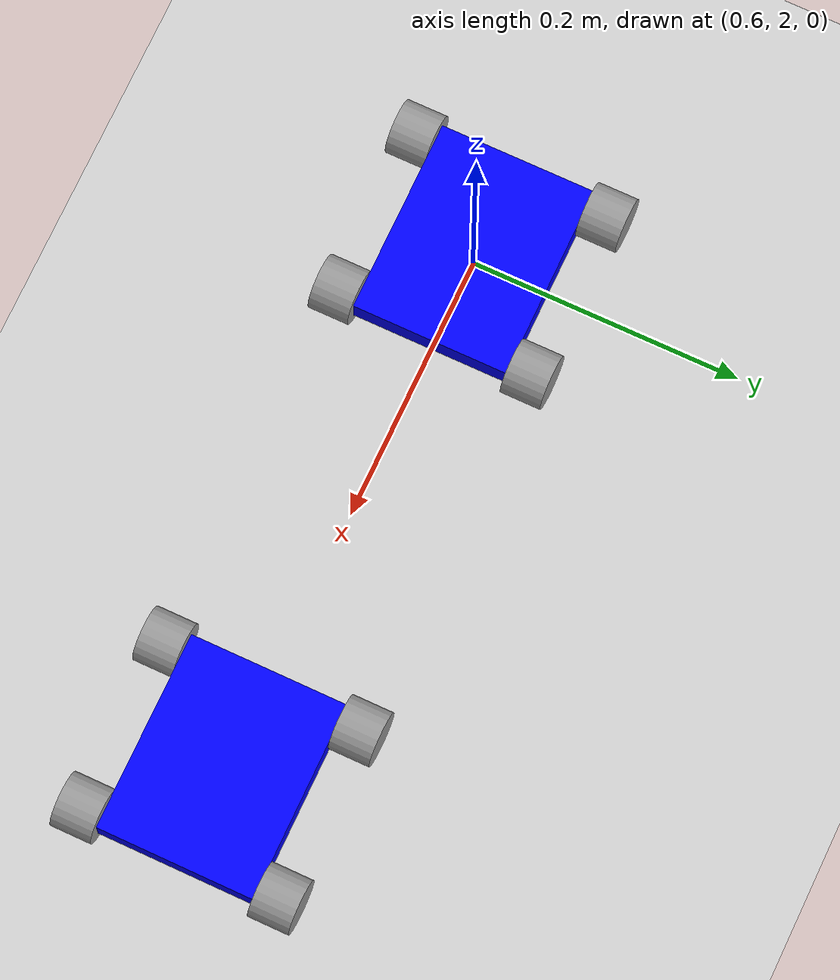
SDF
<sdf version="1.6">
 <world name="default">
  <model name="ground_plane">
   <static>1</static>
   <link name="link">
    <collision name="collision">
     <geometry><plane><normal>0 0 1</normal><size>100 100</size></plane></geometry>
     <surface><friction><ode><mu>100</mu><mu2>50</mu2></ode></friction></surface>
    </collision>
    <visual name="visual">
     <cast_shadows>0</cast_shadows>
     <geometry><plane><normal>0 0 1</normal><size>100 100</size></plane></geometry>
     <material>
      <script><uri>file://media/materials/scripts/gazebo.material</uri><name>Gazebo/Grey</name></script>
     </material>
    </visual>
   </link>
  </model>
  <model name="nanocrawler4">
   <link name="chassis">
    <inertial>
     <mass>1</mass>
     <inertia>
      <ixx>0.166667</ixx>
      <ixy>0</ixy>
      <ixz>0</ixz>
      <iyy>0.166667</iyy>
      <iyz>0</iyz>
      <izz>0.166667</izz>
     </inertia>
    </inertial>
    <visual name="visual">
     <geometry><box><size>0.145 0.115 0.02</size></box></geometry>
     <material>
      <lighting>1</lighting>
      <script><uri>file://media/materials/scripts/gazebo.material</uri><name>Gazebo/Grey</name></script>
      <shader type="pixel"><normal_map>__default__</normal_map></shader>
      <ambient>0 0 1 1</ambient>
      <diffuse>0.7 0.7 0.7 1</diffuse>
      <specular>0.01 0.01 0.01 1</specular>
      <emissive>0 0 0 1</emissive>
     </material>
    </visual>
    <collision name="collision">
     <geometry><box><size>0.145 0.115 0.02</size></box></geometry>
     <surface>
      <friction>
       <ode><mu>1</mu><mu2>1</mu2><fdir1>0 0 0</fdir1><slip1>0</slip1><slip2>0</slip2></ode>
       <torsional>
        <coefficient>1</coefficient>
        <patch_radius>0</patch_radius>
        <surface_radius>0</surface_radius>
        <use_patch_radius>1</use_patch_radius>
        <ode><slip>0</slip></ode>
       </torsional>
      </friction>
      <bounce><restitution_coefficient>0</restitution_coefficient><threshold>1e+06</threshold></bounce>
      <contact>
       <collide_without_contact>0</collide_without_contact>
       <collide_without_contact_bitmask>1</collide_without_contact_bitmask>
       <collide_bitmask>1</collide_bitmask>
       <ode>
        <soft_cfm>0</soft_cfm>
        <soft_erp>0.2</soft_erp>
        <kp>1e+13</kp>
        <kd>1</kd>
        <max_vel>0.01</max_vel>
        <min_depth>0</min_depth>
       </ode>
       <bullet>
        <split_impulse>1</split_impulse>
        <split_impulse_penetration_threshold>-0.01</split_impulse_penetration_threshold>
        <soft_cfm>0</soft_cfm>
        <soft_erp>0.2</soft_erp>
        <kp>1e+13</kp>
        <kd>1</kd>
       </bullet>
      </contact>
     </surface>
    </collision>
   </link>
   <link name="left_front_wheel">
    <pose>0.0625 0.0725 0 1.5708 -0 0</pose>
    <inertial>
     <mass>1</mass>
     <inertia><ixx>0.145833</ixx><ixy>0</ixy><ixz>0</ixz><iyy>0.145833</iyy><iyz>0</iyz><izz>0.125</izz></inertia>
    </inertial>
    <visual name="visual">
     <geometry><cylinder><radius>0.02</radius><length>0.03</length></cylinder></geometry>
     <material>
      <lighting>1</lighting>
      <script><uri>file://media/materials/scripts/gazebo.material</uri><name>Gazebo/Grey</name></script>
      <shader type="pixel"><normal_map>__default__</normal_map></shader>
      <ambient>0.1 0.1 0.1 1</ambient>
      <diffuse>0.7 0.7 0.7 1</diffuse>
      <specular>0.01 0.01 0.01 1</specular>
      <emissive>0 0 0 1</emissive>
     </material>
    </visual>
    <collision name="collision">
     <geometry><cylinder><radius>0.02</radius><length>0.03</length></cylinder></geometry>
     <surface>
      <friction>
       <ode><mu>1</mu><mu2>1</mu2><fdir1>0 0 0</fdir1><slip1>0</slip1><slip2>0</slip2></ode>
       <torsional>
        <coefficient>1</coefficient>
        <patch_radius>0</patch_radius>
        <surface_radius>0</surface_radius>
        <use_patch_radius>1</use_patch_radius>
        <ode><slip>0</slip></ode>
       </torsional>
      </friction>
      <bounce><restitution_coefficient>0</restitution_coefficient><threshold>1e+06</threshold></bounce>
      <contact>
       <collide_without_contact>0</collide_without_contact>
       <collide_without_contact_bitmask>1</collide_without_contact_bitmask>
       <collide_bitmask>1</collide_bitmask>
       <ode>
        <soft_cfm>0</soft_cfm>
        <soft_erp>0.2</soft_erp>
        <kp>1e+13</kp>
        <kd>1</kd>
        <max_vel>0.01</max_vel>
        <min_depth>0</min_depth>
       </ode>
       <bullet>
        <split_impulse>1</split_impulse>
        <split_impulse_penetration_threshold>-0.01</split_impulse_penetration_threshold>
        <soft_cfm>0</soft_cfm>
        <soft_erp>0.2</soft_erp>
        <kp>1e+13</kp>
        <kd>1</kd>
       </bullet>
      </contact>
     </surface>
    </collision>
   </link>
   <joint name="left_front_wheel_hinge" type="revolute">
    <child>left_front_wheel</child>
    <parent>chassis</parent>
    <axis>
     <xyz>0 0 1</xyz>
     <use_parent_model_frame>0</use_parent_model_frame>
     <limit><lower>-1e+16</lower><upper>1e+16</upper></limit>
     <dynamics><spring_reference>0</spring_reference><spring_stiffness>0</spring_stiffness></dynamics>
    </axis>
   </joint>
   <link name="right_front_wheel">
    <pose>0.0625 -0.0725 0 1.5708 -0 0</pose>
    <inertial>
     <mass>1</mass>
     <inertia><ixx>0.145833</ixx><ixy>0</ixy><ixz>0</ixz><iyy>0.145833</iyy><iyz>0</iyz><izz>0.125</izz></inertia>
    </inertial>
    <visual name="visual">
     <geometry><cylinder><radius>0.02</radius><length>0.03</length></cylinder></geometry>
     <material>
      <lighting>1</lighting>
      <script><uri>file://media/materials/scripts/gazebo.material</uri><name>Gazebo/Grey</name></script>
      <shader type="pixel"><normal_map>__default__</normal_map></shader>
      <ambient>0.1 0.1 0.1 1</ambient>
      <diffuse>0.7 0.7 0.7 1</diffuse>
      <specular>0.01 0.01 0.01 1</specular>
      <emissive>0 0 0 1</emissive>
     </material>
    </visual>
    <collision name="collision">
     <geometry><cylinder><radius>0.02</radius><length>0.03</length></cylinder></geometry>
     <surface>
      <friction>
       <ode><mu>1</mu><mu2>1</mu2><fdir1>0 0 0</fdir1><slip1>0</slip1><slip2>0</slip2></ode>
       <torsional>
        <coefficient>1</coefficient>
        <patch_radius>0</patch_radius>
        <surface_radius>0</surface_radius>
        <use_patch_radius>1</use_patch_radius>
        <ode><slip>0</slip></ode>
       </torsional>
      </friction>
      <bounce><restitution_coefficient>0</restitution_coefficient><threshold>1e+06</threshold></bounce>
      <contact>
       <collide_without_contact>0</collide_without_contact>
       <collide_without_contact_bitmask>1</collide_without_contact_bitmask>
       <collide_bitmask>1</collide_bitmask>
       <ode>
        <soft_cfm>0</soft_cfm>
        <soft_erp>0.2</soft_erp>
        <kp>1e+13</kp>
        <kd>1</kd>
        <max_vel>0.01</max_vel>
        <min_depth>0</min_depth>
       </ode>
       <bullet>
        <split_impulse>1</split_impulse>
        <split_impulse_penetration_threshold>-0.01</split_impulse_penetration_threshold>
        <soft_cfm>0</soft_cfm>
        <soft_erp>0.2</soft_erp>
        <kp>1e+13</kp>
        <kd>1</kd>
       </bullet>
      </contact>
     </surface>
    </collision>
   </link>
   <joint name="right_front_wheel_hinge" type="revolute">
    <child>right_front_wheel</child>
    <parent>chassis</parent>
    <axis>
     <xyz>0 0 1</xyz>
     <use_parent_model_frame>0</use_parent_model_frame>
     <limit><lower>-1e+16</lower><upper>1e+16</upper></limit>
     <dynamics><spring_reference>0</spring_reference><spring_stiffness>0</spring_stiffness></dynamics>
    </axis>
   </joint>
   <link name="left_rear_wheel">
    <pose>-0.0625 0.0725 0 1.5708 -0 0</pose>
    <inertial>
     <mass>1</mass>
     <inertia><ixx>0.145833</ixx><ixy>0</ixy><ixz>0</ixz><iyy>0.145833</iyy><iyz>0</iyz><izz>0.125</izz></inertia>
    </inertial>
    <visual name="visual">
     <geometry><cylinder><radius>0.02</radius><length>0.03</length></cylinder></geometry>
     <material>
      <lighting>1</lighting>
      <script><uri>file://media/materials/scripts/gazebo.material</uri><name>Gazebo/Grey</name></script>
      <shader type="pixel"><normal_map>__default__</normal_map></shader>
      <ambient>0.1 0.1 0.1 1</ambient>
      <diffuse>0.7 0.7 0.7 1</diffuse>
      <specular>0.01 0.01 0.01 1</specular>
      <emissive>0 0 0 1</emissive>
     </material>
    </visual>
    <collision name="collision">
     <geometry><cylinder><radius>0.02</radius><length>0.03</length></cylinder></geometry>
     <surface>
      <friction>
       <ode><mu>1</mu><mu2>1</mu2><fdir1>0 0 0</fdir1><slip1>0</slip1><slip2>0</slip2></ode>
       <torsional>
        <coefficient>1</coefficient>
        <patch_radius>0</patch_radius>
        <surface_radius>0</surface_radius>
        <use_patch_radius>1</use_patch_radius>
        <ode><slip>0</slip></ode>
       </torsional>
      </friction>
      <bounce><restitution_coefficient>0</restitution_coefficient><threshold>1e+06</threshold></bounce>
      <contact>
       <collide_without_contact>0</collide_without_contact>
       <collide_without_contact_bitmask>1</collide_without_contact_bitmask>
       <collide_bitmask>1</collide_bitmask>
       <ode>
        <soft_cfm>0</soft_cfm>
        <soft_erp>0.2</soft_erp>
        <kp>1e+13</kp>
        <kd>1</kd>
        <max_vel>0.01</max_vel>
        <min_depth>0</min_depth>
       </ode>
       <bullet>
        <split_impulse>1</split_impulse>
        <split_impulse_penetration_threshold>-0.01</split_impulse_penetration_threshold>
        <soft_cfm>0</soft_cfm>
        <soft_erp>0.2</soft_erp>
        <kp>1e+13</kp>
        <kd>1</kd>
       </bullet>
      </contact>
     </surface>
    </collision>
   </link>
   <joint name="left_rear_wheel_hinge" type="revolute">
    <child>left_rear_wheel</child>
    <parent>chassis</parent>
    <axis>
     <xyz>0 0 1</xyz>
     <use_parent_model_frame>0</use_parent_model_frame>
     <limit><lower>-1e+16</lower><upper>1e+16</upper></limit>
     <dynamics><spring_reference>0</spring_reference><spring_stiffness>0</spring_stiffness></dynamics>
    </axis>
   </joint>
   <link name="right_rear_wheel">
    <pose>-0.0625 -0.0725 0 1.5708 -0 0</pose>
    <inertial>
     <mass>1</mass>
     <inertia><ixx>0.145833</ixx><ixy>0</ixy><ixz>0</ixz><iyy>0.145833</iyy><iyz>0</iyz><izz>0.125</izz></inertia>
    </inertial>
    <visual name="visual">
     <geometry><cylinder><radius>0.02</radius><length>0.03</length></cylinder></geometry>
     <material>
      <lighting>1</lighting>
      <script><uri>file://media/materials/scripts/gazebo.material</uri><name>Gazebo/Grey</name></script>
      <shader type="pixel"><normal_map>__default__</normal_map></shader>
      <ambient>0.1 0.1 0.1 1</ambient>
      <diffuse>0.7 0.7 0.7 1</diffuse>
      <specular>0.01 0.01 0.01 1</specular>
      <emissive>0 0 0 1</emissive>
     </material>
    </visual>
    <collision name="collision">
     <geometry><cylinder><radius>0.02</radius><length>0.03</length></cylinder></geometry>
     <surface>
      <friction>
       <ode><mu>1</mu><mu2>1</mu2><fdir1>0 0 0</fdir1><slip1>0</slip1><slip2>0</slip2></ode>
       <torsional>
        <coefficient>1</coefficient>
        <patch_radius>0</patch_radius>
        <surface_radius>0</surface_radius>
        <use_patch_radius>1</use_patch_radius>
        <ode><slip>0</slip></ode>
       </torsional>
      </friction>
      <bounce><restitution_coefficient>0</restitution_coefficient><threshold>1e+06</threshold></bounce>
      <contact>
       <collide_without_contact>0</collide_without_contact>
       <collide_without_contact_bitmask>1</collide_without_contact_bitmask>
       <collide_bitmask>1</collide_bitmask>
       <ode>
        <soft_cfm>0</soft_cfm>
        <soft_erp>0.2</soft_erp>
        <kp>1e+13</kp>
        <kd>1</kd>
        <max_vel>0.01</max_vel>
        <min_depth>0</min_depth>
       </ode>
       <bullet>
        <split_impulse>1</split_impulse>
        <split_impulse_penetration_threshold>-0.01</split_impulse_penetration_threshold>
        <soft_cfm>0</soft_cfm>
        <soft_erp>0.2</soft_erp>
        <kp>1e+13</kp>
        <kd>1</kd>
       </bullet>
      </contact>
     </surface>
    </collision>
   </link>
   <joint name="right_rear_wheel_hinge" type="revolute">
    <child>right_rear_wheel</child>
    <parent>chassis</parent>
    <axis>
     <xyz>0 0 1</xyz>
     <use_parent_model_frame>0</use_parent_model_frame>
     <limit><lower>-1e+16</lower><upper>1e+16</upper></limit>
     <dynamics><spring_reference>0</spring_reference><spring_stiffness>0</spring_stiffness></dynamics>
    </axis>
   </joint>
   <static>0</static>
   <pose>0.599744 2.0001 0.02 -1e-06 2e-06 -0.000482</pose>
  </model>
  <model name="nanocrawler5">
   <link name="chassis">
    <inertial>
     <mass>1</mass>
     <inertia>
      <ixx>0.166667</ixx>
      <ixy>0</ixy>
      <ixz>0</ixz>
      <iyy>0.166667</iyy>
      <iyz>0</iyz>
      <izz>0.166667</izz>
     </inertia>
    </inertial>
    <visual name="visual">
     <geometry><box><size>0.145 0.115 0.02</size></box></geometry>
     <material>
      <lighting>1</lighting>
      <script><uri>file://media/materials/scripts/gazebo.material</uri><name>Gazebo/Grey</name></script>
      <shader type="pixel"><normal_map>__default__</normal_map></shader>
      <ambient>0 0 1 1</ambient>
      <diffuse>0.7 0.7 0.7 1</diffuse>
      <specular>0.01 0.01 0.01 1</specular>
      <emissive>0 0 0 1</emissive>
     </material>
    </visual>
    <collision name="collision">
     <geometry><box><size>0.145 0.115 0.02</size></box></geometry>
     <surface>
      <friction>
       <ode><mu>1</mu><mu2>1</mu2><fdir1>0 0 0</fdir1><slip1>0</slip1><slip2>0</slip2></ode>
       <torsional>
        <coefficient>1</coefficient>
        <patch_radius>0</patch_radius>
        <surface_radius>0</surface_radius>
        <use_patch_radius>1</use_patch_radius>
        <ode><slip>0</slip></ode>
       </torsional>
      </friction>
      <bounce><restitution_coefficient>0</restitution_coefficient><threshold>1e+06</threshold></bounce>
      <contact>
       <collide_without_contact>0</collide_without_contact>
       <collide_without_contact_bitmask>1</collide_without_contact_bitmask>
       <collide_bitmask>1</collide_bitmask>
       <ode>
        <soft_cfm>0</soft_cfm>
        <soft_erp>0.2</soft_erp>
        <kp>1e+13</kp>
        <kd>1</kd>
        <max_vel>0.01</max_vel>
        <min_depth>0</min_depth>
       </ode>
       <bullet>
        <split_impulse>1</split_impulse>
        <split_impulse_penetration_threshold>-0.01</split_impulse_penetration_threshold>
        <soft_cfm>0</soft_cfm>
        <soft_erp>0.2</soft_erp>
        <kp>1e+13</kp>
        <kd>1</kd>
       </bullet>
      </contact>
     </surface>
    </collision>
   </link>
   <link name="left_front_wheel">
    <pose>0.0625 0.0725 0 1.5708 -0 0</pose>
    <inertial>
     <mass>1</mass>
     <inertia><ixx>0.145833</ixx><ixy>0</ixy><ixz>0</ixz><iyy>0.145833</iyy><iyz>0</iyz><izz>0.125</izz></inertia>
    </inertial>
    <visual name="visual">
     <geometry><cylinder><radius>0.02</radius><length>0.03</length></cylinder></geometry>
     <material>
      <lighting>1</lighting>
      <script><uri>file://media/materials/scripts/gazebo.material</uri><name>Gazebo/Grey</name></script>
      <shader type="pixel"><normal_map>__default__</normal_map></shader>
      <ambient>0.1 0.1 0.1 1</ambient>
      <diffuse>0.7 0.7 0.7 1</diffuse>
      <specular>0.01 0.01 0.01 1</specular>
      <emissive>0 0 0 1</emissive>
     </material>
    </visual>
    <collision name="collision">
     <geometry><cylinder><radius>0.02</radius><length>0.03</length></cylinder></geometry>
     <surface>
      <friction>
       <ode><mu>1</mu><mu2>1</mu2><fdir1>0 0 0</fdir1><slip1>0</slip1><slip2>0</slip2></ode>
       <torsional>
        <coefficient>1</coefficient>
        <patch_radius>0</patch_radius>
        <surface_radius>0</surface_radius>
        <use_patch_radius>1</use_patch_radius>
        <ode><slip>0</slip></ode>
       </torsional>
      </friction>
      <bounce><restitution_coefficient>0</restitution_coefficient><threshold>1e+06</threshold></bounce>
      <contact>
       <collide_without_contact>0</collide_without_contact>
       <collide_without_contact_bitmask>1</collide_without_contact_bitmask>
       <collide_bitmask>1</collide_bitmask>
       <ode>
        <soft_cfm>0</soft_cfm>
        <soft_erp>0.2</soft_erp>
        <kp>1e+13</kp>
        <kd>1</kd>
        <max_vel>0.01</max_vel>
        <min_depth>0</min_depth>
       </ode>
       <bullet>
        <split_impulse>1</split_impulse>
        <split_impulse_penetration_threshold>-0.01</split_impulse_penetration_threshold>
        <soft_cfm>0</soft_cfm>
        <soft_erp>0.2</soft_erp>
        <kp>1e+13</kp>
        <kd>1</kd>
       </bullet>
      </contact>
     </surface>
    </collision>
   </link>
   <joint name="left_front_wheel_hinge" type="revolute">
    <child>left_front_wheel</child>
    <parent>chassis</parent>
    <axis>
     <xyz>0 0 1</xyz>
     <use_parent_model_frame>0</use_parent_model_frame>
     <limit><lower>-1e+16</lower><upper>1e+16</upper></limit>
     <dynamics><spring_reference>0</spring_reference><spring_stiffness>0</spring_stiffness></dynamics>
    </axis>
   </joint>
   <link name="right_front_wheel">
    <pose>0.0625 -0.0725 0 1.5708 -0 0</pose>
    <inertial>
     <mass>1</mass>
     <inertia><ixx>0.145833</ixx><ixy>0</ixy><ixz>0</ixz><iyy>0.145833</iyy><iyz>0</iyz><izz>0.125</izz></inertia>
    </inertial>
    <visual name="visual">
     <geometry><cylinder><radius>0.02</radius><length>0.03</length></cylinder></geometry>
     <material>
      <lighting>1</lighting>
      <script><uri>file://media/materials/scripts/gazebo.material</uri><name>Gazebo/Grey</name></script>
      <shader type="pixel"><normal_map>__default__</normal_map></shader>
      <ambient>0.1 0.1 0.1 1</ambient>
      <diffuse>0.7 0.7 0.7 1</diffuse>
      <specular>0.01 0.01 0.01 1</specular>
      <emissive>0 0 0 1</emissive>
     </material>
    </visual>
    <collision name="collision">
     <geometry><cylinder><radius>0.02</radius><length>0.03</length></cylinder></geometry>
     <surface>
      <friction>
       <ode><mu>1</mu><mu2>1</mu2><fdir1>0 0 0</fdir1><slip1>0</slip1><slip2>0</slip2></ode>
       <torsional>
        <coefficient>1</coefficient>
        <patch_radius>0</patch_radius>
        <surface_radius>0</surface_radius>
        <use_patch_radius>1</use_patch_radius>
        <ode><slip>0</slip></ode>
       </torsional>
      </friction>
      <bounce><restitution_coefficient>0</restitution_coefficient><threshold>1e+06</threshold></bounce>
      <contact>
       <collide_without_contact>0</collide_without_contact>
       <collide_without_contact_bitmask>1</collide_without_contact_bitmask>
       <collide_bitmask>1</collide_bitmask>
       <ode>
        <soft_cfm>0</soft_cfm>
        <soft_erp>0.2</soft_erp>
        <kp>1e+13</kp>
        <kd>1</kd>
        <max_vel>0.01</max_vel>
        <min_depth>0</min_depth>
       </ode>
       <bullet>
        <split_impulse>1</split_impulse>
        <split_impulse_penetration_threshold>-0.01</split_impulse_penetration_threshold>
        <soft_cfm>0</soft_cfm>
        <soft_erp>0.2</soft_erp>
        <kp>1e+13</kp>
        <kd>1</kd>
       </bullet>
      </contact>
     </surface>
    </collision>
   </link>
   <joint name="right_front_wheel_hinge" type="revolute">
    <child>right_front_wheel</child>
    <parent>chassis</parent>
    <axis>
     <xyz>0 0 1</xyz>
     <use_parent_model_frame>0</use_parent_model_frame>
     <limit><lower>-1e+16</lower><upper>1e+16</upper></limit>
     <dynamics><spring_reference>0</spring_reference><spring_stiffness>0</spring_stiffness></dynamics>
    </axis>
   </joint>
   <link name="left_rear_wheel">
    <pose>-0.0625 0.0725 0 1.5708 -0 0</pose>
    <inertial>
     <mass>1</mass>
     <inertia><ixx>0.145833</ixx><ixy>0</ixy><ixz>0</ixz><iyy>0.145833</iyy><iyz>0</iyz><izz>0.125</izz></inertia>
    </inertial>
    <visual name="visual">
     <geometry><cylinder><radius>0.02</radius><length>0.03</length></cylinder></geometry>
     <material>
      <lighting>1</lighting>
      <script><uri>file://media/materials/scripts/gazebo.material</uri><name>Gazebo/Grey</name></script>
      <shader type="pixel"><normal_map>__default__</normal_map></shader>
      <ambient>0.1 0.1 0.1 1</ambient>
      <diffuse>0.7 0.7 0.7 1</diffuse>
      <specular>0.01 0.01 0.01 1</specular>
      <emissive>0 0 0 1</emissive>
     </material>
    </visual>
    <collision name="collision">
     <geometry><cylinder><radius>0.02</radius><length>0.03</length></cylinder></geometry>
     <surface>
      <friction>
       <ode><mu>1</mu><mu2>1</mu2><fdir1>0 0 0</fdir1><slip1>0</slip1><slip2>0</slip2></ode>
       <torsional>
        <coefficient>1</coefficient>
        <patch_radius>0</patch_radius>
        <surface_radius>0</surface_radius>
        <use_patch_radius>1</use_patch_radius>
        <ode><slip>0</slip></ode>
       </torsional>
      </friction>
      <bounce><restitution_coefficient>0</restitution_coefficient><threshold>1e+06</threshold></bounce>
      <contact>
       <collide_without_contact>0</collide_without_contact>
       <collide_without_contact_bitmask>1</collide_without_contact_bitmask>
       <collide_bitmask>1</collide_bitmask>
       <ode>
        <soft_cfm>0</soft_cfm>
        <soft_erp>0.2</soft_erp>
        <kp>1e+13</kp>
        <kd>1</kd>
        <max_vel>0.01</max_vel>
        <min_depth>0</min_depth>
       </ode>
       <bullet>
        <split_impulse>1</split_impulse>
        <split_impulse_penetration_threshold>-0.01</split_impulse_penetration_threshold>
        <soft_cfm>0</soft_cfm>
        <soft_erp>0.2</soft_erp>
        <kp>1e+13</kp>
        <kd>1</kd>
       </bullet>
      </contact>
     </surface>
    </collision>
   </link>
   <joint name="left_rear_wheel_hinge" type="revolute">
    <child>left_rear_wheel</child>
    <parent>chassis</parent>
    <axis>
     <xyz>0 0 1</xyz>
     <use_parent_model_frame>0</use_parent_model_frame>
     <limit><lower>-1e+16</lower><upper>1e+16</upper></limit>
     <dynamics><spring_reference>0</spring_reference><spring_stiffness>0</spring_stiffness></dynamics>
    </axis>
   </joint>
   <link name="right_rear_wheel">
    <pose>-0.0625 -0.0725 0 1.5708 -0 0</pose>
    <inertial>
     <mass>1</mass>
     <inertia><ixx>0.145833</ixx><ixy>0</ixy><ixz>0</ixz><iyy>0.145833</iyy><iyz>0</iyz><izz>0.125</izz></inertia>
    </inertial>
    <visual name="visual">
     <geometry><cylinder><radius>0.02</radius><length>0.03</length></cylinder></geometry>
     <material>
      <lighting>1</lighting>
      <script><uri>file://media/materials/scripts/gazebo.material</uri><name>Gazebo/Grey</name></script>
      <shader type="pixel"><normal_map>__default__</normal_map></shader>
      <ambient>0.1 0.1 0.1 1</ambient>
      <diffuse>0.7 0.7 0.7 1</diffuse>
      <specular>0.01 0.01 0.01 1</specular>
      <emissive>0 0 0 1</emissive>
     </material>
    </visual>
    <collision name="collision">
     <geometry><cylinder><radius>0.02</radius><length>0.03</length></cylinder></geometry>
     <surface>
      <friction>
       <ode><mu>1</mu><mu2>1</mu2><fdir1>0 0 0</fdir1><slip1>0</slip1><slip2>0</slip2></ode>
       <torsional>
        <coefficient>1</coefficient>
        <patch_radius>0</patch_radius>
        <surface_radius>0</surface_radius>
        <use_patch_radius>1</use_patch_radius>
        <ode><slip>0</slip></ode>
       </torsional>
      </friction>
      <bounce><restitution_coefficient>0</restitution_coefficient><threshold>1e+06</threshold></bounce>
      <contact>
       <collide_without_contact>0</collide_without_contact>
       <collide_without_contact_bitmask>1</collide_without_contact_bitmask>
       <collide_bitmask>1</collide_bitmask>
       <ode>
        <soft_cfm>0</soft_cfm>
        <soft_erp>0.2</soft_erp>
        <kp>1e+13</kp>
        <kd>1</kd>
        <max_vel>0.01</max_vel>
        <min_depth>0</min_depth>
       </ode>
       <bullet>
        <split_impulse>1</split_impulse>
        <split_impulse_penetration_threshold>-0.01</split_impulse_penetration_threshold>
        <soft_cfm>0</soft_cfm>
        <soft_erp>0.2</soft_erp>
        <kp>1e+13</kp>
        <kd>1</kd>
       </bullet>
      </contact>
     </surface>
    </collision>
   </link>
   <joint name="right_rear_wheel_hinge" type="revolute">
    <child>right_rear_wheel</child>
    <parent>chassis</parent>
    <axis>
     <xyz>0 0 1</xyz>
     <use_parent_model_frame>0</use_parent_model_frame>
     <limit><lower>-1e+16</lower><upper>1e+16</upper></limit>
     <dynamics><spring_reference>0</spring_reference><spring_stiffness>0</spring_stiffness></dynamics>
    </axis>
   </joint>
   <static>0</static>
   <pose>0.999744 2.0001 0.02 -1e-06 2e-06 -0.000482</pose>
  </model>
 </world>
</sdf>
